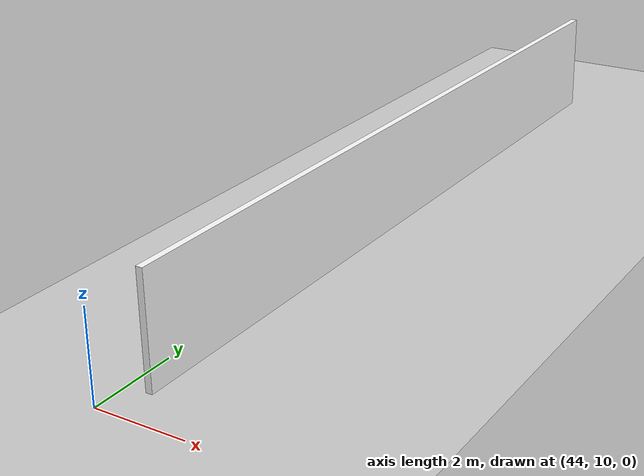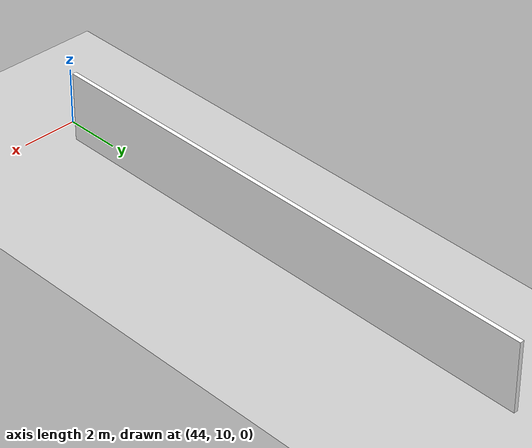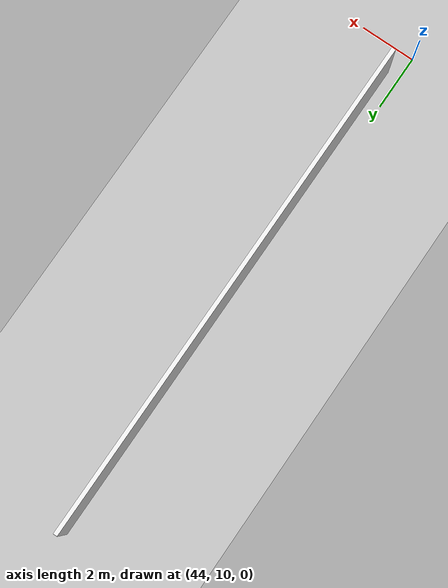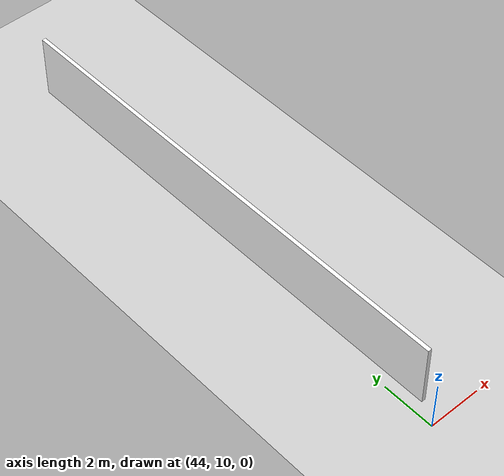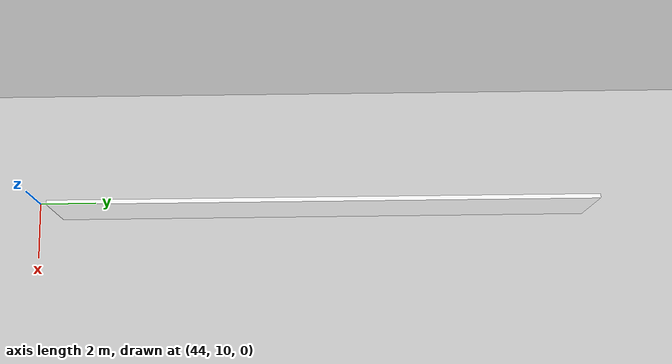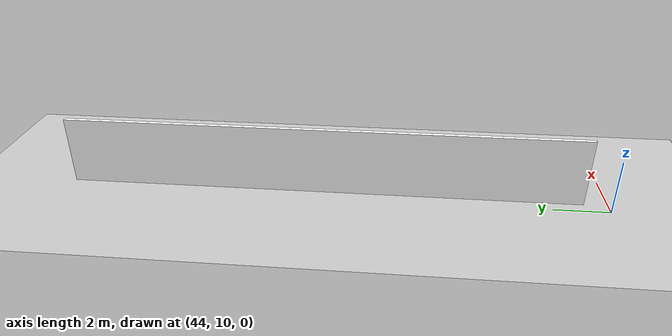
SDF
<sdf version="1.6">
 <world name="default">
  <model name="ground_plane">
   <static>1</static>
   <link name="link">
    <collision name="collision">
     <geometry><plane><normal>0 0 1</normal><size>100 100</size></plane></geometry>
     <surface><friction><ode><mu>100</mu><mu2>50</mu2></ode></friction></surface>
    </collision>
    <visual name="visual">
     <cast_shadows>0</cast_shadows>
     <geometry><plane><normal>0 0 1</normal><size>100 100</size></plane></geometry>
     <material>
      <script>
       <uri>model://office_env/materials/scripts</uri>
       <uri>model://office_env/materials/textures</uri>
       <name>wall</name>
      </script>
     </material>
    </visual>
   </link>
  </model>
  <model name="aule_N">
   <pose>0.1887 -1.4289 0 0 -0 0</pose>
   <link name="Wall_41">
    <collision name="Wall_41_Collision">
     <geometry><box><size>18.75 0.15 2.5</size></box></geometry>
     <pose>0 0 1.25 0 -0 0</pose>
    </collision>
    <visual name="Wall_41_Visual">
     <pose>0 0 1.25 0 -0 0</pose>
     <geometry><box><size>18.75 0.15 2.5</size></box></geometry>
     <material>
      <script>
       <uri>model://office_env/materials/scripts</uri>
       <uri>model://office_env/materials/textures</uri>
       <name>wall</name>
      </script>
      <ambient>1 1 1 1</ambient>
     </material>
    </visual>
    <pose>44.3203 21.6455 0 0 -0 1.5708</pose>
   </link>
   <static>1</static>
  </model>
 </world>
</sdf>
